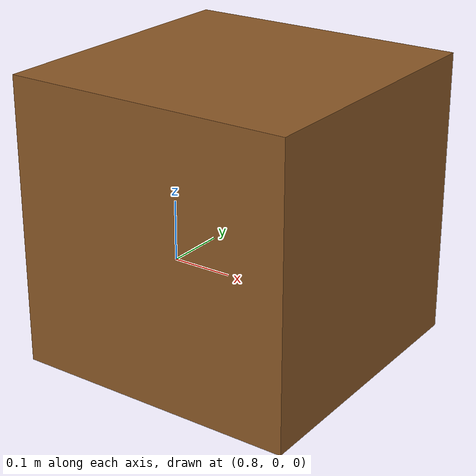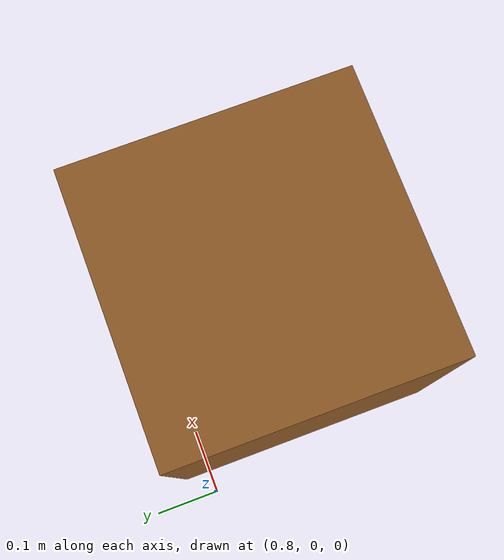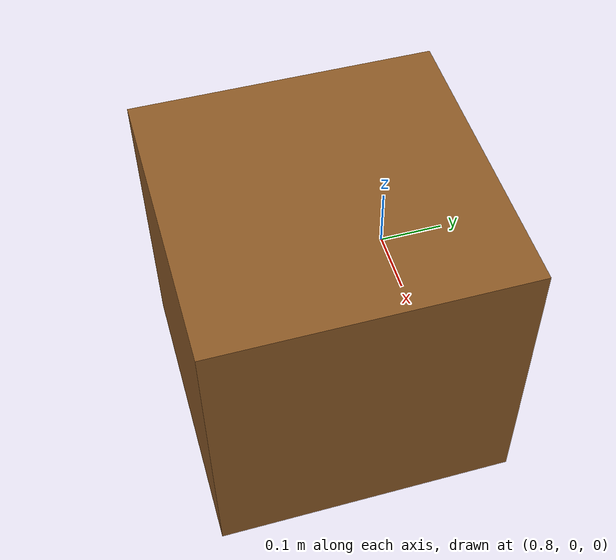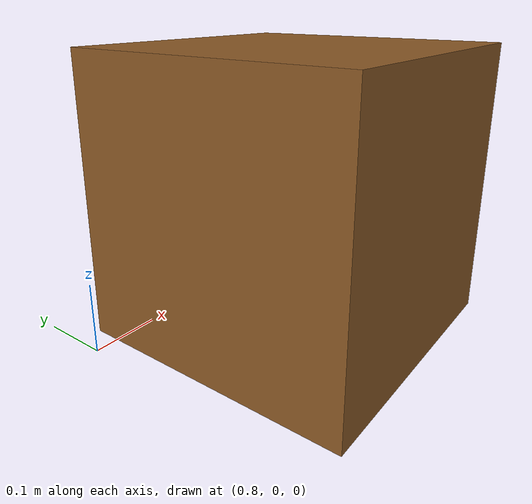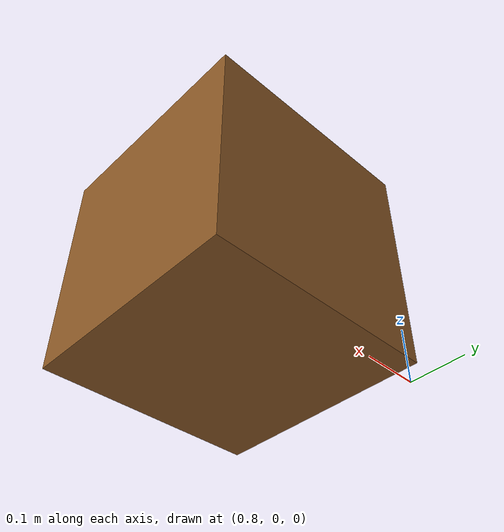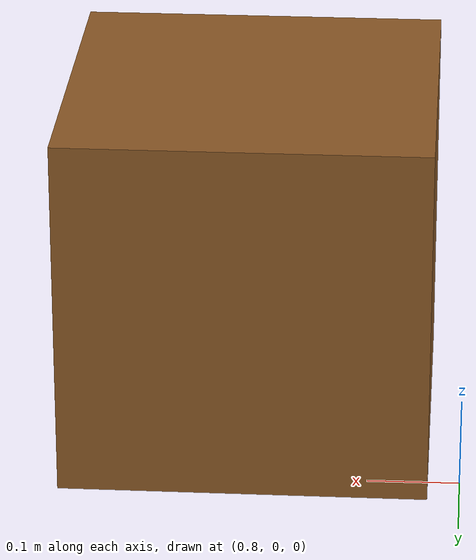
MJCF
<?xml version="1.0"?>
<mujoco model="cube40">
  <worldbody>
    <body name="suitcase" pos="1.034730 -0.161323 0">
      <freejoint name="suitcase_root"/>
      <inertial mass="0.9" pos="0 0 0.2" diaginertia="0.024 0.024 0.024"/>
      <geom type="box" size="0.2 0.2 0.2" pos="0 0 0.2" rgba="0.55 0.35 0.15 1"/>
    </body>
  </worldbody>
  <sensor>
    <framepos name="suitcase_pos" objtype="xbody" objname="suitcase"/>
    <framequat name="suitcase_quat" objtype="xbody" objname="suitcase"/>
  </sensor>
</mujoco>
